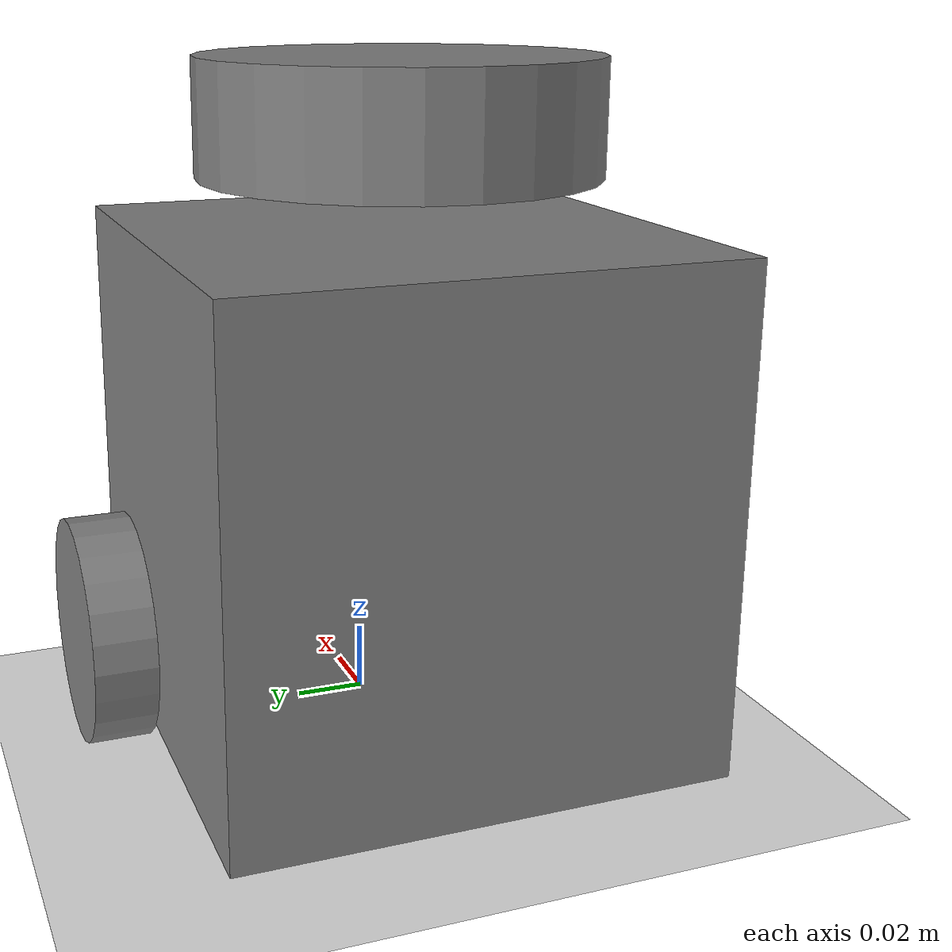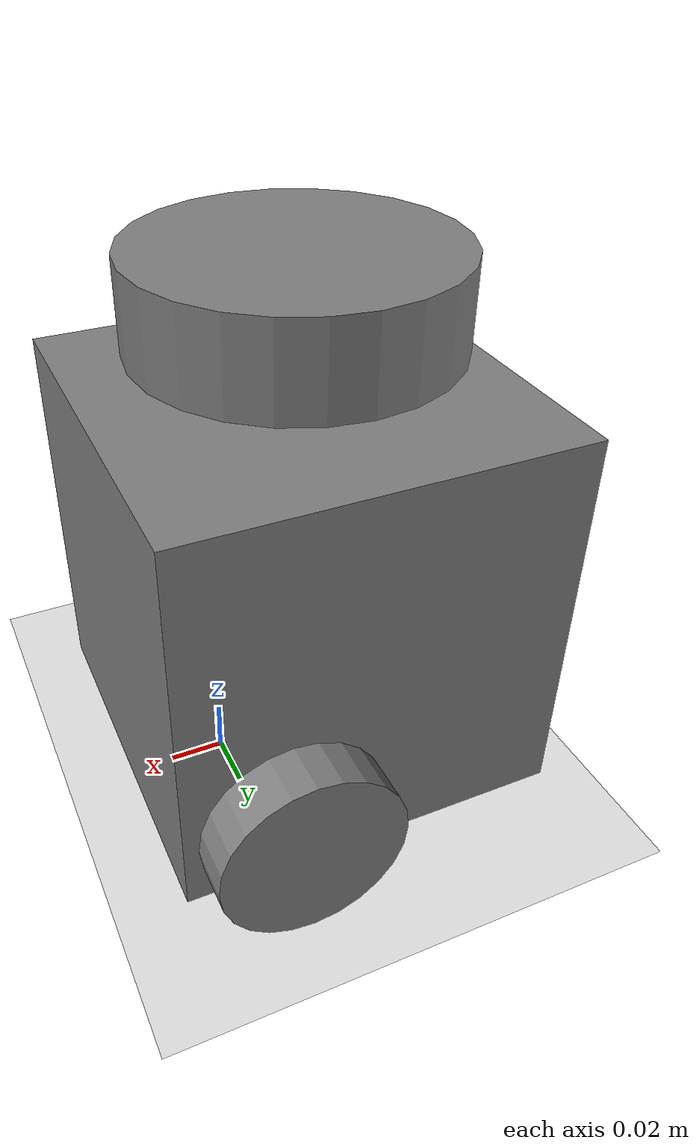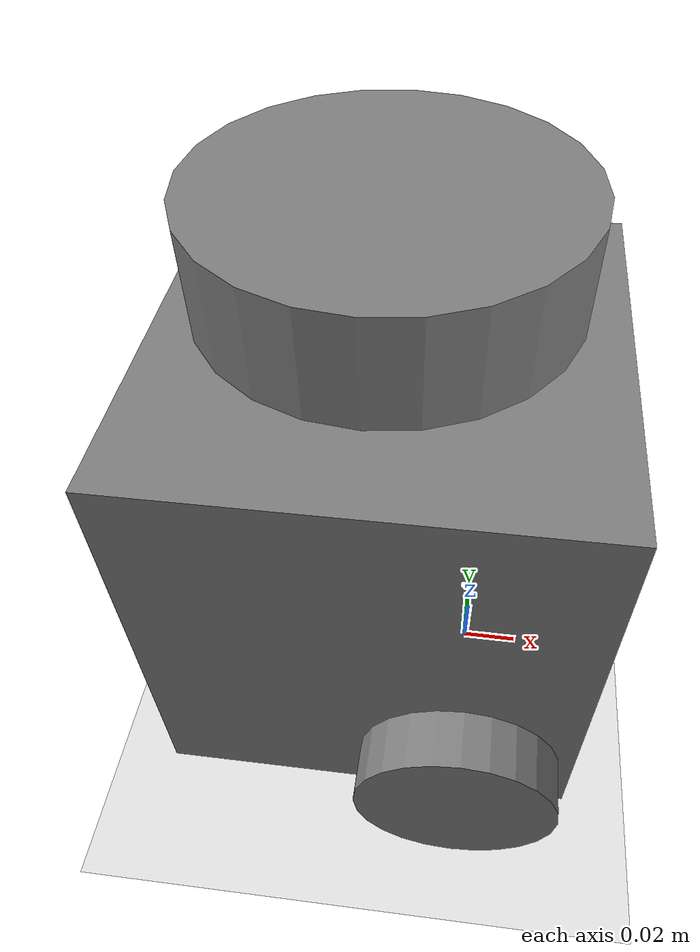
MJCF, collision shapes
<mujoco model="turtlebot3_burger">
  <option timestep="0.005" integrator="implicitfast"/>

  <visual>
    <rgba haze="0.6 0.6 0.6 1"/>
    <headlight ambient="0.4 0.4 0.4" diffuse="0.6 0.6 0.6" specular="0.2 0.2 0.2"/>
  </visual>

  <asset>
    <texture type="skybox" builtin="gradient" rgb1="0.6 0.7 0.8" rgb2="0.2 0.2 0.3"
             width="512" height="512"/>
    <mesh name="burger_base" file="../meshes/bases/burger_base.stl" scale="0.001 0.001 0.001"/>
    <mesh name="left_tire" file="../meshes/wheels/left_tire.stl" scale="0.001 0.001 0.001"/>
    <mesh name="right_tire" file="../meshes/wheels/right_tire.stl" scale="0.001 0.001 0.001"/>
    <mesh name="lds" file="../meshes/sensors/lds.stl" scale="0.001 0.001 0.001"/>
  </asset>

  <worldbody>
    <light pos="0 0 3" dir="0 0 -1" diffuse="0.8 0.8 0.8"/>
    <light pos="2 2 2" dir="-0.5 -0.5 -1" diffuse="0.4 0.4 0.4"/>
    <geom name="floor" type="plane" size="5 5 0.1" rgba="0.9 0.9 0.9 1"
          friction="0.05 0.005 0.0001"/>

    <body name="base_link" pos="0 0 0.010">
      <freejoint name="base_joint"/>
      <inertial pos="-0.032 0 0.036" mass="1.046"
                 diaginertia="0.00134 0.00128 0.00213"/>
      <geom type="box" size="0.07 0.07 0.0715" pos="-0.032 0 0.070"
            mass="0.5"/>
      <geom type="mesh" mesh="burger_base" pos="-0.032 0 0.0"
            rgba="1 1 0.2 1" contype="0" conaffinity="0"/>

      <body name="wheel_left_link" pos="0 0.08 0.023">
        <joint name="wheel_left_joint" type="hinge" axis="0 1 0"
               armature="0.01" frictionloss="0.1"/>
        <inertial pos="0 0 0" mass="0.028"
                   diaginertia="2.07e-05 1.12e-05 1.12e-05"/>
        <geom type="cylinder" size="0.033 0.009" zaxis="0 1 0"/>
        <geom type="mesh" mesh="left_tire" rgba="0.2 0.2 0.2 1"
              contype="0" conaffinity="0"/>
      </body>

      <body name="wheel_right_link" pos="0 -0.08 0.023">
        <joint name="wheel_right_joint" type="hinge" axis="0 1 0"
               armature="0.01" frictionloss="0.1"/>
        <inertial pos="0 0 0" mass="0.028"
                   diaginertia="2.07e-05 1.12e-05 1.12e-05"/>
        <geom type="cylinder" size="0.033 0.009" zaxis="0 1 0"/>
        <geom type="mesh" mesh="right_tire" rgba="0.2 0.2 0.2 1"
              contype="0" conaffinity="0"/>
      </body>

      <body name="caster_back_link" pos="-0.081 0 0">
        <inertial pos="0 0 0" mass="0.001"
                   diaginertia="1e-07 1e-07 1e-07"/>
        <geom type="sphere" size="0.01" rgba="0.3 0.3 0.3 1"
              friction="0.0001 0.0001 0.0001" condim="1"/>
      </body>

      <body name="base_scan" pos="-0.032 0 0.172">
        <inertial pos="0 0 0" mass="0.1"
                   diaginertia="1e-05 1e-05 1e-06"/>
        <geom type="cylinder" size="0.055 0.016"/>
        <geom type="mesh" mesh="lds" rgba="0.3 0.3 0.3 1"
              contype="0" conaffinity="0"/>
      </body>
    </body>

  </worldbody>

  <actuator>
    <velocity name="left_motor" joint="wheel_left_joint" kv="0.1" ctrlrange="-20 20" ctrllimited="true"/>
    <velocity name="right_motor" joint="wheel_right_joint" kv="0.1" ctrlrange="-20 20" ctrllimited="true"/>
  </actuator>

  <contact>
    <exclude body1="base_link" body2="wheel_left_link"/>
    <exclude body1="base_link" body2="wheel_right_link"/>
    <exclude body1="base_link" body2="caster_back_link"/>
  </contact>
</mujoco>
